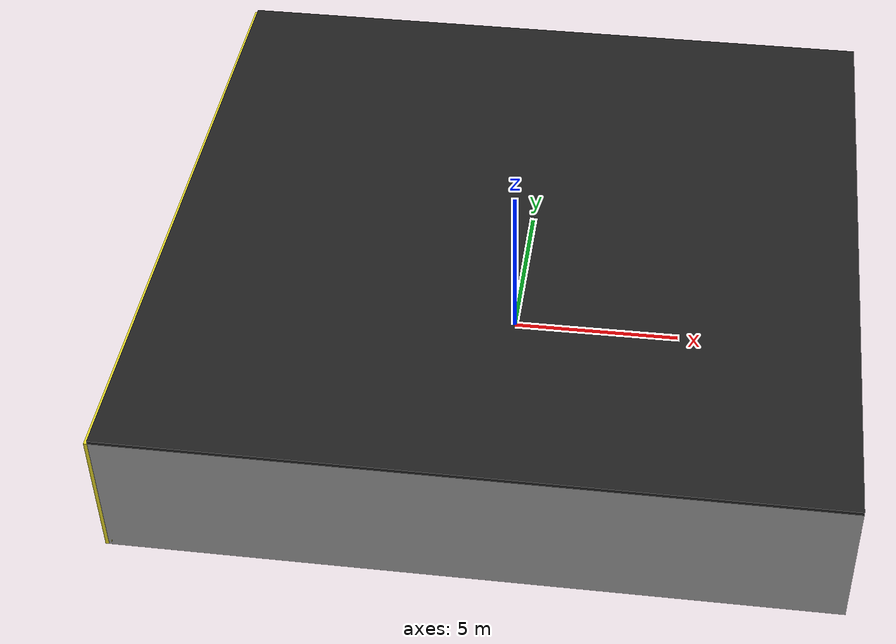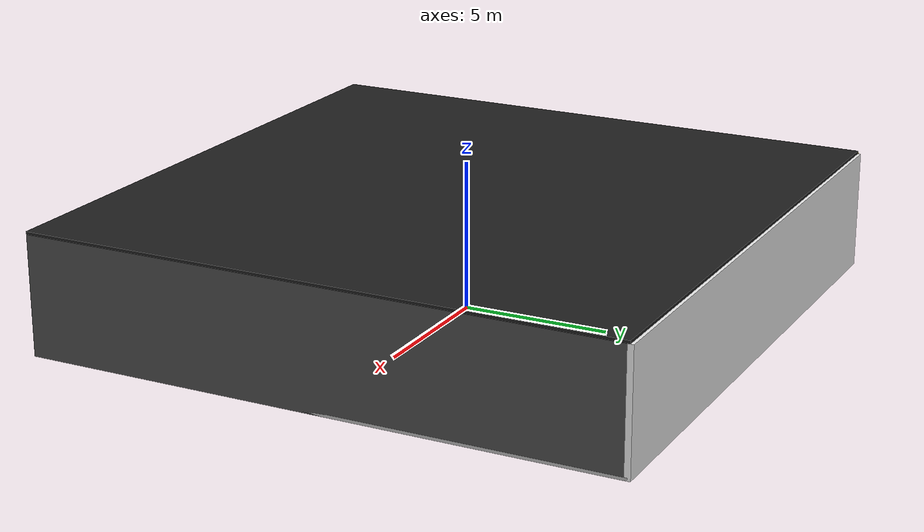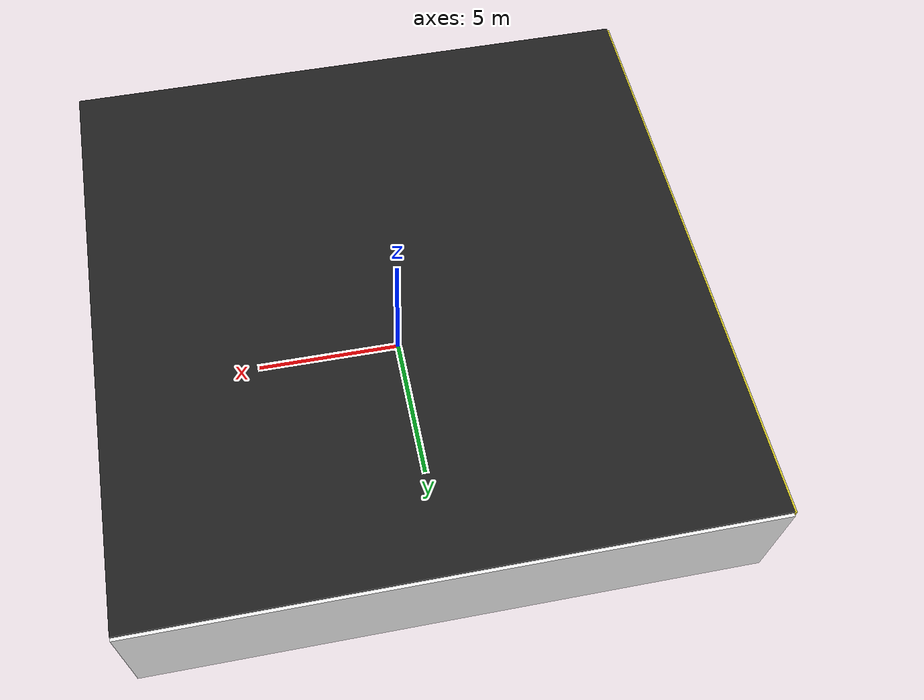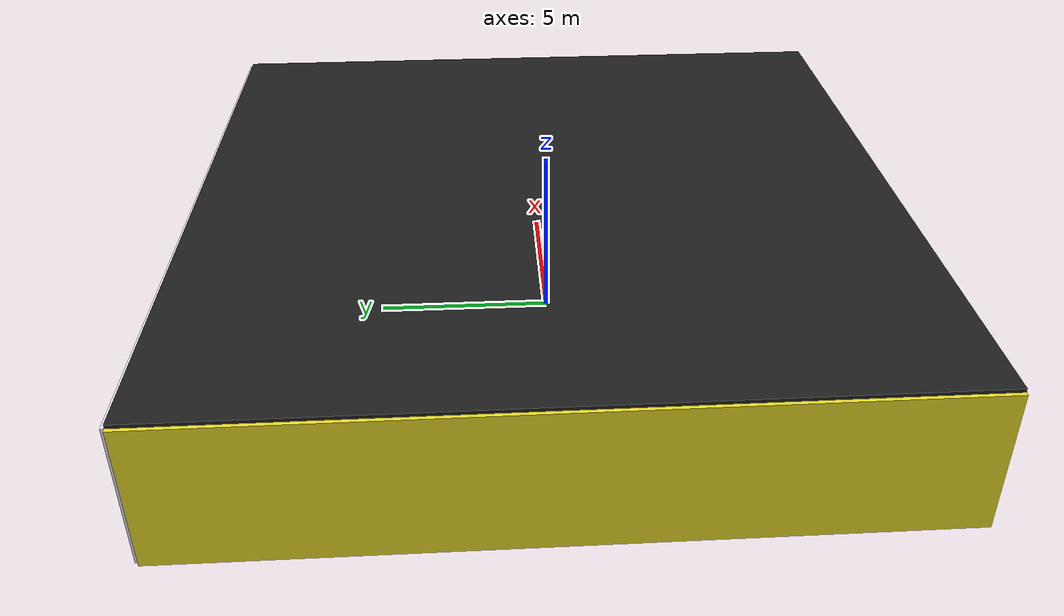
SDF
<sdf version="1.4">
 <world name="default">
  <physics type="ode">
   <max_step_size>0.001</max_step_size>
   <real_time_factor>1</real_time_factor>
   <real_time_update_rate>1000</real_time_update_rate>
   <gravity>0 0 -9.8</gravity>
  </physics>
  <scene><ambient>0.4 0.4 0.4 1</ambient><background>0.7 0.7 0.7 1</background><shadows>1</shadows></scene>
  <model name="Surrounding">
   <static>1</static>
   <link name="Ceiling">
    <collision name="Ceiling_Collision"><geometry><box><size>20 20 0.1</size></box></geometry></collision>
    <visual name="Ceiling_Visual">
     <geometry><box><size>20 20 0.1</size></box></geometry>
     <material>
      <script><uri>file://media/materials/scripts/gazebo.material</uri><name>Gazebo/Black</name></script>
     </material>
    </visual>
    <pose>0 0 4.05 0 0 0</pose>
   </link>
   <link name="Wall_South">
    <collision name="Wall_South_Collision">
     <geometry><box><size>20 0 4</size></box></geometry>
     <pose>0 0 2 0 -0 0</pose>
    </collision>
    <visual name="Wall_South_Visual">
     <pose>0 0 2 0 -0 0</pose>
     <geometry><box><size>20 0 4</size></box></geometry>
     <material>
      <script><uri>file://media/materials/scripts/gazebo.material</uri><name>Gazebo/Grey</name></script>
     </material>
    </visual>
    <velocity_decay><linear>0</linear><angular>0</angular></velocity_decay>
    <pose>0 -10 0 0 -0 0</pose>
   </link>
   <link name="Wall_East">
    <collision name="Wall_21_Collision">
     <geometry><box><size>20 0 4</size></box></geometry>
     <pose>0 0 2 0 -0 0</pose>
    </collision>
    <visual name="Wall_21_Visual">
     <pose>0 0 2 0 -0 0</pose>
     <geometry><box><size>20 0 4</size></box></geometry>
     <material>
      <script><uri>file://media/materials/scripts/gazebo.material</uri><name>Gazebo/DarkGrey</name></script>
     </material>
    </visual>
    <velocity_decay><linear>0</linear><angular>0</angular></velocity_decay>
    <pose>10 0 0 0 -0 1.5708</pose>
   </link>
   <link name="Wall_North">
    <collision name="Wall_22_Collision">
     <geometry><box><size>20 0.2 4</size></box></geometry>
     <pose>0 0 2 0 -0 0</pose>
    </collision>
    <visual name="Wall_22_Visual">
     <pose>0 0 2 0 -0 0</pose>
     <geometry><box><size>20 0.2 4</size></box></geometry>
     <material>
      <script><uri>file://media/materials/scripts/gazebo.material</uri><name>Gazebo/White</name></script>
     </material>
    </visual>
    <velocity_decay><linear>0</linear><angular>0</angular></velocity_decay>
    <pose>0 10 0 0 -0 0</pose>
   </link>
   <link name="Wall_West">
    <collision name="Wall_23_Collision">
     <geometry><box><size>20 0.2 4</size></box></geometry>
     <pose>0 0 2 0 -0 0</pose>
    </collision>
    <visual name="Wall_23_Visual">
     <pose>0 0 2 0 -0 0</pose>
     <geometry><box><size>20 0.2 4</size></box></geometry>
     <material>
      <script><uri>file://media/materials/scripts/gazebo.material</uri><name>Gazebo/YellowGlow</name></script>
     </material>
    </visual>
    <velocity_decay><linear>0</linear><angular>0</angular></velocity_decay>
    <pose>-10 0 0 0 0 -1.5708</pose>
   </link>
   <link name="Ground_link">
    <collision name="collision">
     <pose>0 0 .05 0 -0 0</pose>
     <geometry><box><size>20 20 0.1</size></box></geometry>
    </collision>
    <visual name="visual">
     <pose>0 0 .05 0 -0 0</pose>
     <geometry><box><size>20 20 0.1</size></box></geometry>
     <material>
      <script><uri>file://media/materials/scripts/gazebo.material</uri><name>Gazebo/LightOn</name></script>
     </material>
    </visual>
   </link>
   <static>1</static>
  </model>
  <spherical_coordinates>
   <surface_model>EARTH_WGS84</surface_model>
   <latitude_deg>0</latitude_deg>
   <longitude_deg>0</longitude_deg>
   <elevation>0</elevation>
   <heading_deg>0</heading_deg>
  </spherical_coordinates>
  <light name="lightball_0" type="diffuse">
   <diffuse>0.8 0.8 0.8 1</diffuse>
   <specular>0.2 0.2 0.2 1</specular>
   <attenuation>
    <range>100</range>
    <constant>0.7</constant>
    <linear>0.01</linear>
    <quadratic>0.001</quadratic>
   </attenuation>
   <direction>-0.5 0.1 -0.9</direction>
   <pose>-0.0502345371109 -1.35564140333 0.789513626908 0 0 0</pose>
  </light>
  <light name="lightball_1" type="diffuse">
   <diffuse>0.8 0.8 0.8 1</diffuse>
   <specular>0.2 0.2 0.2 1</specular>
   <attenuation>
    <range>100</range>
    <constant>0.7</constant>
    <linear>0.01</linear>
    <quadratic>0.001</quadratic>
   </attenuation>
   <direction>-0.5 0.1 -0.9</direction>
   <pose>5.27413147903 2.44710088037 0.984162428486 0 0 0</pose>
  </light>
  <light name="lightball_2" type="diffuse">
   <diffuse>0.8 0.8 0.8 1</diffuse>
   <specular>0.2 0.2 0.2 1</specular>
   <attenuation>
    <range>100</range>
    <constant>0.7</constant>
    <linear>0.01</linear>
    <quadratic>0.001</quadratic>
   </attenuation>
   <direction>-0.5 0.1 -0.9</direction>
   <pose>-9.63055327451 8.69537207024 2.34564287059 0 0 0</pose>
  </light>
  <light name="lightball_3" type="diffuse">
   <diffuse>0.8 0.8 0.8 1</diffuse>
   <specular>0.2 0.2 0.2 1</specular>
   <attenuation>
    <range>100</range>
    <constant>0.7</constant>
    <linear>0.01</linear>
    <quadratic>0.001</quadratic>
   </attenuation>
   <direction>-0.5 0.1 -0.9</direction>
   <pose>8.53086119717 -3.04222901505 2.73728869278 0 0 0</pose>
  </light>
  <include><uri>model://table</uri><pose>4.84901135763 -1.45982586844 0 0 0 0.118252700965</pose></include>
 </world>
</sdf>

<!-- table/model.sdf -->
<sdf version="1.5">
  <model name="table">
    <static>true</static>
    <link name="link">
      <collision name="surface">
        <pose>0 0 1.0 0 0 0</pose>
        <geometry>
          <box>
            <size>1.5 0.8 0.03</size>
          </box>
        </geometry>
        <surface>
          <friction>
            <ode>
              <mu>0.6</mu>
              <mu2>0.6</mu2>
            </ode>
          </friction>
        </surface>
      </collision>
      <visual name="visual1">
        <pose>0 0 1.0 0 0 0</pose>
        <geometry>
          <box>
            <size>1.5 0.8 0.03</size>
          </box>
        </geometry>
        <material>
          <script>
            <uri>model://media/materials/scripts/gazebo.material</uri>
            <name>Gazebo/Wood</name>
          </script>
        </material>
      </visual>
      <collision name="front_left_leg">
        <pose>0.68 0.38 0.5 0 0 0</pose>
        <geometry>
          <cylinder>
            <radius>0.02</radius>
            <length>1.0</length>
          </cylinder>
        </geometry>
      </collision>
      <visual name="front_left_leg">
        <pose>0.68 0.38 0.5 0 0 0</pose>
        <geometry>
          <cylinder>
            <radius>0.02</radius>
            <length>1.0</length>
          </cylinder>
        </geometry>
        <material>
          <script>
            <uri>model://media/materials/scripts/gazebo.material</uri>
            <name>Gazebo/Grey</name>
          </script>
        </material>
      </visual>
      <collision name="front_right_leg">
        <pose>0.68 -0.38 0.5 0 0 0</pose>
        <geometry>
          <cylinder>
            <radius>0.02</radius>
            <length>1.0</length>
          </cylinder>
        </geometry>
      </collision>
      <visual name="front_right_leg">
        <pose>0.68 -0.38 0.5 0 0 0</pose>
        <geometry>
          <cylinder>
            <radius>0.02</radius>
            <length>1.0</length>
          </cylinder>
        </geometry>
        <material>
          <script>
            <uri>model://media/materials/scripts/gazebo.material</uri>
            <name>Gazebo/Grey</name>
          </script>
        </material>
      </visual>
      <collision name="back_right_leg">
        <pose>-0.68 -0.38 0.5 0 0 0</pose>
        <geometry>
          <cylinder>
            <radius>0.02</radius>
            <length>1.0</length>
          </cylinder>
        </geometry>
      </collision>
      <visual name="back_right_leg">
        <pose>-0.68 -0.38 0.5 0 0 0</pose>
        <geometry>
          <cylinder>
            <radius>0.02</radius>
            <length>1.0</length>
          </cylinder>
        </geometry>
        <material>
          <script>
            <uri>model://media/materials/scripts/gazebo.material</uri>
            <name>Gazebo/Grey</name>
          </script>
        </material>
      </visual>
      <collision name="back_left_leg">
        <pose>-0.68 0.38 0.5 0 0 0</pose>
        <geometry>
          <cylinder>
            <radius>0.02</radius>
            <length>1.0</length>
          </cylinder>
        </geometry>
      </collision>
      <visual name="back_left_leg">
        <pose>-0.68 0.38 0.5 0 0 0</pose>
        <geometry>
          <cylinder>
            <radius>0.02</radius>
            <length>1.0</length>
          </cylinder>
        </geometry>
        <material>
          <script>
            <uri>model://media/materials/scripts/gazebo.material</uri>
            <name>Gazebo/Grey</name>
          </script>
        </material>
      </visual>
    </link>
  </model>
</sdf>
